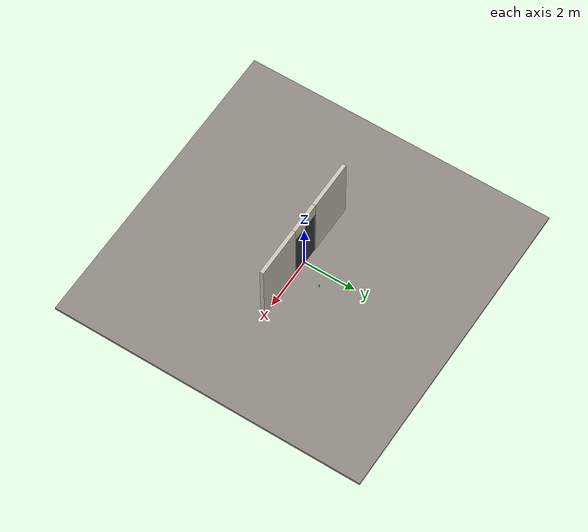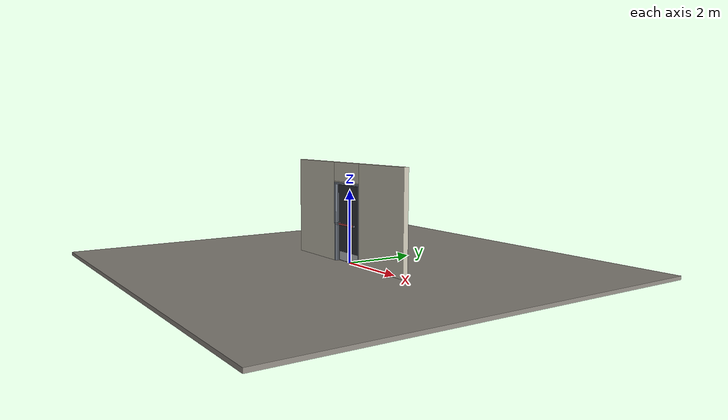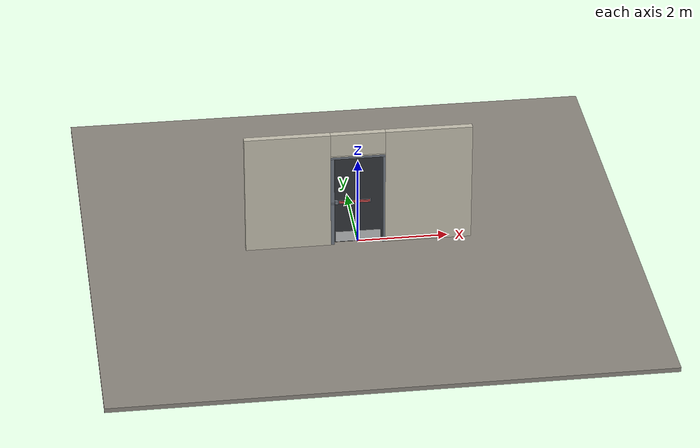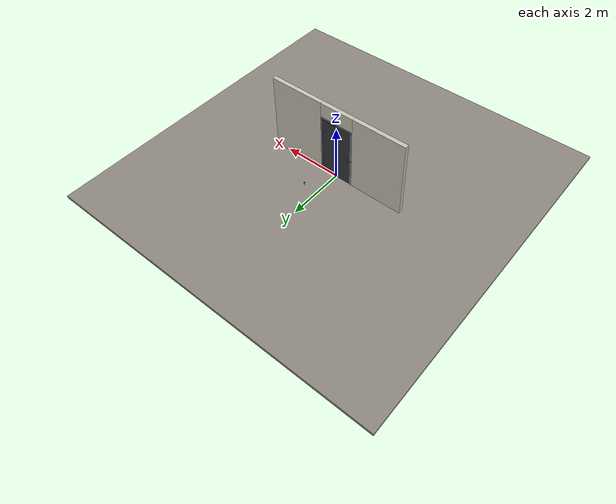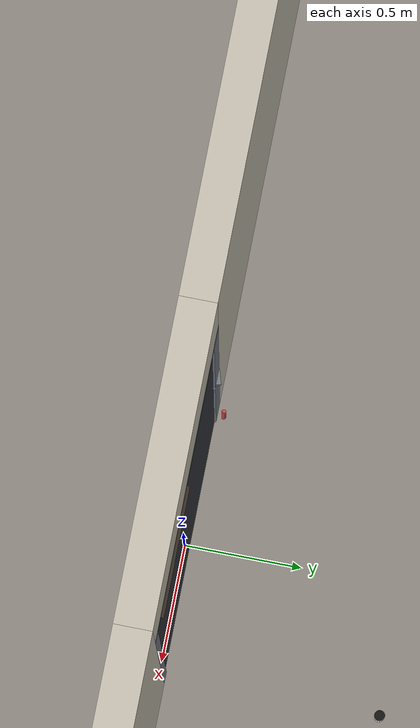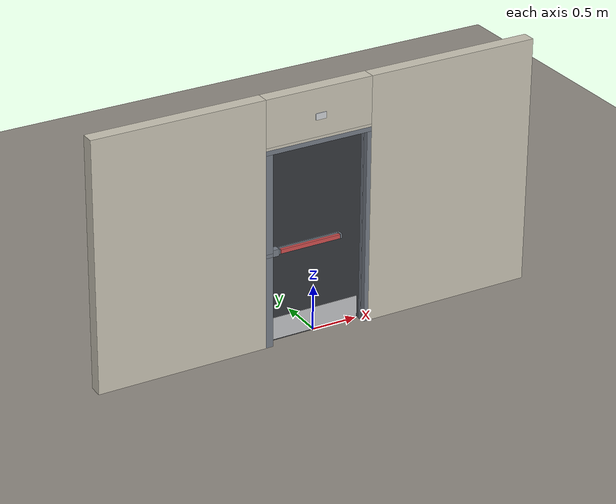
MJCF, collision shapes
<?xml version="1.0" ?>
<mujoco model="db0778_swing_single_full">
  <compiler angle="radian" meshdir="../../hardware" texturedir="../../textures" autolimits="true" inertiafromgeom="false"/>
  <option timestep="0.002" integrator="implicitfast" cone="elliptic" impratio="10" noslip_iterations="3">
    <flag multiccd="enable"/>
  </option>
  <size memory="16M"/>
  <default>
    <geom condim="4" solref="0.005 1" solimp="0.95 0.99 0.001"/>
    <joint solreflimit="0.005 1" solimplimit="0.95 0.99 0.001"/>
    <tendon solreflimit="0.005 1"/>
    <equality solref="0.002 1"/>
  </default>
  <visual>
    <headlight ambient="0.4 0.4 0.4" diffuse="0.7 0.7 0.7" specular="0.2 0.2 0.2"/>
    <quality shadowsize="4096"/>
    <map znear="0.01" zfar="60"/>
  </visual>
  <asset>
    <mesh name="exit_sign_a6449bfa2c" file="exit_sign_a6449bfa2c.obj"/>
    <mesh name="hinge_ed08f20e7f" file="hinge_ed08f20e7f.obj"/>
    <mesh name="hinge_jamb_1278ce3e25" file="hinge_jamb_1278ce3e25.obj"/>
    <mesh name="pull_1e5d69a91a" file="pull_1e5d69a91a.obj"/>
    <mesh name="touchbar_pad_53c3bea3f4" file="touchbar_pad_53c3bea3f4.obj"/>
    <material name="mat_floor" rgba="0.55 0.53 0.5 1" specular="0.2" shininess="0.15" reflectance="0"/>
    <material name="mat_wall" rgba="0.78 0.76 0.7 1" specular="0.2" shininess="0.1" reflectance="0"/>
    <material name="mat_leaf" rgba="0.2 0.21 0.23 1" specular="0.2" shininess="0.43" reflectance="0"/>
    <material name="mat_leaf_louver" rgba="0.17 0.178 0.196 1" specular="0.2" shininess="0.4" reflectance="0"/>
    <material name="mat_hinge" rgba="0.65 0.66 0.68 1" specular="0.74" shininess="0.5" reflectance="0.36"/>
    <material name="mat_op_steel_painted" rgba="0.45 0.48 0.52 1" specular="0.32" shininess="0.6" reflectance="0.08"/>
    <material name="mat_op_stainless" rgba="0.75 0.76 0.77 1" specular="0.8" shininess="0.65" reflectance="0.4"/>
    <material name="mat_bolt" rgba="0.75 0.76 0.77 1" specular="0.8" shininess="0.65" reflectance="0.4"/>
    <material name="mat_frame" rgba="0.45 0.48 0.52 1" specular="0.32" shininess="0.6" reflectance="0.08"/>
    <material name="mat_seal" rgba="0.1 0.1 0.1 1" specular="0.2" shininess="0.1" reflectance="0"/>
    <material name="mat_closer" rgba="0.22 0.17 0.13 1" specular="0.8" shininess="0.6" reflectance="0.4"/>
    <material name="mat_kick" rgba="0.75 0.76 0.77 1" specular="0.8" shininess="0.65" reflectance="0.4"/>
    <material name="mat_exit_sign" rgba="0.85 0.1 0.1 1" specular="0.2" shininess="0.6" reflectance="0"/>
    <material name="mat_sign_bracket" rgba="0.8 0.81 0.83 1" specular="0.8" shininess="0.6" reflectance="0.4"/>
    <material name="mat_bumper_stop" rgba="0.08 0.08 0.08 1" specular="0.2" shininess="0.1" reflectance="0"/>
    <material name="mat_stop_base" rgba="0.9 0.9 0.92 1" specular="0.8" shininess="0.9" reflectance="0.4"/>
    <texture name="skybox" type="skybox" builtin="gradient" rgb1="0.6 0.7 0.85" rgb2="0.9 0.92 0.95" width="256" height="256"/>
  </asset>
  <worldbody>
    <light name="sun" pos="1.5 -2.5 4" dir="-0.3 0.5 -0.8" directional="true" diffuse="0.8 0.8 0.8" specular="0.3 0.3 0.3" castshadow="true"/>
    <light name="fill" pos="-1.5 2.5 3" dir="0.3 -0.5 -0.7" directional="true" diffuse="0.35 0.35 0.4" castshadow="false"/>
    <camera name="robot_view" pos="0 -2.681312 1.812087" xyaxes="1 0 0 0 0.26963 0.962964" fovy="52"/>
    <camera name="far_view" pos="0 2.594313 1.812087" xyaxes="-1 0 0 0 -0.26963 0.962964" fovy="52"/>
    <camera name="iso" pos="-2.004737 -2.259262 2.234138" xyaxes="0.741536 -0.670913 0 0.242917 0.268487 0.932151" fovy="46"/>
    <camera name="detail_handle" pos="-0.263 -0.718 1.32" xyaxes="0.97561 0.219512 0 -0.070934 0.315262 0.94635" fovy="38"/>
    <geom name="floor" type="box" size="6 6 0.05" pos="0 0 -0.05" material="mat_floor" group="0" contype="1" conaffinity="1" friction="0.8 0.005 0.0001" density="2400"/>
    <geom name="wall_left" type="box" size="0.9415 0.0725 1.3735" pos="-1.5585 -0.0435 1.3735" material="mat_wall" group="0" contype="1" conaffinity="1" friction="0.6 0.005 0.0001" density="800"/>
    <geom name="wall_right" type="box" size="0.9565 0.0725 1.3735" pos="1.5435 -0.0435 1.3735" material="mat_wall" group="0" contype="1" conaffinity="1" friction="0.6 0.005 0.0001" density="800"/>
    <geom name="wall_header" type="box" size="0.602 0.0725 0.26" pos="-0.015 -0.0435 2.487" material="mat_wall" group="0" contype="1" conaffinity="1" friction="0.6 0.005 0.0001" density="800"/>
    <geom name="hinge_0_jamb" type="mesh" mesh="hinge_jamb_1278ce3e25" pos="0.534 0.029 0.259" quat="0 0 0 1" material="mat_hinge" group="1" contype="0" conaffinity="0" density="7850"/>
    <geom name="hinge_1_jamb" type="mesh" mesh="hinge_jamb_1278ce3e25" pos="0.534 0.029 0.827" quat="0 0 0 1" material="mat_hinge" group="1" contype="0" conaffinity="0" density="7850"/>
    <geom name="hinge_2_jamb" type="mesh" mesh="hinge_jamb_1278ce3e25" pos="0.534 0.029 1.395" quat="0 0 0 1" material="mat_hinge" group="1" contype="0" conaffinity="0" density="7850"/>
    <geom name="hinge_3_jamb" type="mesh" mesh="hinge_jamb_1278ce3e25" pos="0.534 0.029 1.963" quat="0 0 0 1" material="mat_hinge" group="1" contype="0" conaffinity="0" density="7850"/>
    <geom name="jamb_hinge" type="box" size="0.025 0.0725 1.0735" pos="0.562 -0.0435 1.0735" material="mat_frame" group="0" contype="1" conaffinity="1" friction="0.6 0.005 0.0001" density="300"/>
    <geom name="strike_1040_wall_n" type="box" size="0.04 0.0305 0.02" pos="-0.577 -0.0855 1.04" material="mat_frame" group="0" contype="1" conaffinity="1" friction="0.6 0.005 0.0001" density="300"/>
    <geom name="strike_1040_wall_p" type="box" size="0.04 0.008 0.02" pos="-0.577 -0.025 1.04" material="mat_frame" group="0" contype="1" conaffinity="1" friction="0.6 0.005 0.0001" density="300"/>
    <geom name="strike_1040_ramp" type="box" size="0.04 0.034482 0.02" pos="-0.585281 0.0044 1.04" quat="0.989198 0 0 0.146587" material="mat_frame" group="0" contype="1" conaffinity="1" friction="0.12 0.005 0.0001" density="300"/>
    <geom name="strike_1040_back" type="box" size="0.0285 0.011 0.02" pos="-0.5885 -0.044 1.04" material="mat_frame" group="0" contype="1" conaffinity="1" friction="0.6 0.005 0.0001" density="300"/>
    <geom name="jamb_strike_0" type="box" size="0.04 0.0725 0.51" pos="-0.577 -0.0435 0.51" material="mat_frame" group="0" contype="1" conaffinity="1" friction="0.6 0.005 0.0001" density="300"/>
    <geom name="jamb_strike_1" type="box" size="0.04 0.0725 0.5435" pos="-0.577 -0.0435 1.6035" material="mat_frame" group="0" contype="1" conaffinity="1" friction="0.6 0.005 0.0001" density="300"/>
    <geom name="jamb_head" type="box" size="0.602 0.0725 0.025" pos="-0.015 -0.0435 2.172" material="mat_frame" group="0" contype="1" conaffinity="1" friction="0.6 0.005 0.0001" density="300"/>
    <geom name="head_stud" type="box" size="0.602 0.0725 0.015" pos="-0.015 -0.0435 2.212" material="mat_wall" group="0" contype="1" conaffinity="1" friction="0.6 0.005 0.0001" density="500"/>
    <geom name="stop_hinge" type="box" size="0.0055 0.016 1.0735" pos="0.5315 -0.0385 1.0735" material="mat_frame" group="0" contype="1" conaffinity="1" friction="0.6 0.005 0.0001" density="300"/>
    <geom name="stop_strike" type="box" size="0.0055 0.016 0.49625" pos="-0.5315 -0.0385 0.49625" material="mat_frame" group="0" contype="1" conaffinity="1" friction="0.6 0.005 0.0001" density="300"/>
    <geom name="stop_strike_1" type="box" size="0.0055 0.016 0.52975" pos="-0.5315 -0.0385 1.61725" material="mat_frame" group="0" contype="1" conaffinity="1" friction="0.6 0.005 0.0001" density="300"/>
    <geom name="stop_head" type="box" size="0.537 0.016 0.0055" pos="0 -0.0385 2.1415" material="mat_frame" group="0" contype="1" conaffinity="1" friction="0.6 0.005 0.0001" density="300"/>
    <geom name="seal_hinge" type="box" size="0.004 0.0025 1.0735" pos="0.534 -0.0245 1.0735" material="mat_seal" group="1" contype="0" conaffinity="0" density="1100"/>
    <geom name="seal_strike" type="box" size="0.004 0.0025 0.49625" pos="-0.534 -0.0245 0.49625" material="mat_seal" group="1" contype="0" conaffinity="0" density="1100"/>
    <geom name="seal_strike_1" type="box" size="0.004 0.0025 0.52975" pos="-0.534 -0.0245 1.61725" material="mat_seal" group="1" contype="0" conaffinity="0" density="1100"/>
    <geom name="seal_head" type="box" size="0.517 0.0025 0.008" pos="0 -0.0245 2.135" material="mat_seal" group="1" contype="0" conaffinity="0" density="1100"/>
    <geom name="closer_concealed_slot" type="box" size="0.25 0.008 0.004" pos="0.237 0.032 2.152" material="mat_closer" group="1" contype="0" conaffinity="0" density="2700"/>
    <geom name="exit_sign" type="mesh" mesh="exit_sign_a6449bfa2c" pos="0 -0.15 2.447" material="mat_exit_sign" group="2" contype="0" conaffinity="0" density="500"/>
    <geom name="exit_sign_bracket" type="box" size="0.05775 0.005 0.035" pos="0 -0.1205 2.447" material="mat_sign_bracket" group="2" contype="0" conaffinity="0" density="7850"/>
    <geom name="door_stop_base" type="cylinder" size="0.022 0.003" pos="0.55 0.93595 0.003" material="mat_stop_base" group="0" contype="1" conaffinity="1" friction="0.6 0.005 0.0001" density="7850"/>
    <geom name="door_stop_post" type="cylinder" size="0.012 0.0245" pos="0.55 0.93595 0.0305" material="mat_stop_base" group="0" contype="1" conaffinity="1" friction="0.6 0.005 0.0001" density="7850"/>
    <geom name="door_stop_bumper" type="cylinder" size="0.022 0.02" pos="0.55 0.93595 0.075" material="mat_bumper_stop" group="0" contype="1" conaffinity="1" friction="0.6 0.005 0.0001" density="1100"/>
    <site name="approach_point" pos="0 -1.5 0" quat="1 0 0 0" size="0.05" rgba="0.2 0.9 0.2 0.5" group="4"/>
    <site name="goal_point" pos="0 1.5 0" quat="1 0 0 0" size="0.05" rgba="0.2 0.9 0.2 0.5" group="4"/>
    <site name="door_plane_center" pos="0 0 1.0735" quat="1 0 0 0" size="0.02" rgba="0.2 0.9 0.2 0.5" group="4"/>
    <body name="leaf" pos="0.537 0 0">
      <inertial pos="-0.539365 -0.002123 1.027111" mass="57.783332" quat="0.500054 0.501254 -0.497376 0.501307" diaginertia="5.837734073 22.177632752 27.979714889"/>
      <joint name="leaf_hinge" type="hinge" axis="0 0 -1" pos="-0.003 0.029 0" limited="true" range="0 1.570796" solreflimit="0.02 1" damping="10.49954" frictionloss="2.445432" stiffness="13.852846" springref="-2.233476" armature="0.02"/>
      <geom name="leaf_slab" type="box" size="0.5335 0.022 1.067" pos="-0.5365 0 1.076" material="mat_leaf" group="0" contype="1" conaffinity="1" friction="0.4 0.005 0.0001" density="1"/>
      <geom name="leaf_louver_0" type="box" size="0.26675 0.002 0.02625" pos="-0.5365 0 0.284" quat="0.953717 0.300706 0 0" material="mat_leaf_louver" group="1" contype="0" conaffinity="0" density="1"/>
      <geom name="leaf_louver_1" type="box" size="0.26675 0.002 0.02625" pos="-0.5365 0 0.334" quat="0.953717 0.300706 0 0" material="mat_leaf_louver" group="1" contype="0" conaffinity="0" density="1"/>
      <geom name="leaf_louver_2" type="box" size="0.26675 0.002 0.02625" pos="-0.5365 0 0.384" quat="0.953717 0.300706 0 0" material="mat_leaf_louver" group="1" contype="0" conaffinity="0" density="1"/>
      <geom name="leaf_louver_3" type="box" size="0.26675 0.002 0.02625" pos="-0.5365 0 0.434" quat="0.953717 0.300706 0 0" material="mat_leaf_louver" group="1" contype="0" conaffinity="0" density="1"/>
      <geom name="leaf_louver_4" type="box" size="0.26675 0.002 0.02625" pos="-0.5365 0 0.484" quat="0.953717 0.300706 0 0" material="mat_leaf_louver" group="1" contype="0" conaffinity="0" density="1"/>
      <geom name="leaf_louver_5" type="box" size="0.26675 0.002 0.02625" pos="-0.5365 0 0.534" quat="0.953717 0.300706 0 0" material="mat_leaf_louver" group="1" contype="0" conaffinity="0" density="1"/>
      <geom name="leaf_louver_6" type="box" size="0.26675 0.002 0.02625" pos="-0.5365 0 0.584" quat="0.953717 0.300706 0 0" material="mat_leaf_louver" group="1" contype="0" conaffinity="0" density="1"/>
      <geom name="leaf_louver_7" type="box" size="0.26675 0.002 0.02625" pos="-0.5365 0 0.634" quat="0.953717 0.300706 0 0" material="mat_leaf_louver" group="1" contype="0" conaffinity="0" density="1"/>
      <geom name="leaf_louver_8" type="box" size="0.26675 0.002 0.02625" pos="-0.5365 0 0.684" quat="0.953717 0.300706 0 0" material="mat_leaf_louver" group="1" contype="0" conaffinity="0" density="1"/>
      <geom name="hinge_0" type="mesh" mesh="hinge_ed08f20e7f" pos="-0.003 0.029 0.259" quat="0 0 0 1" material="mat_hinge" group="1" contype="0" conaffinity="0" density="7850"/>
      <geom name="hinge_1" type="mesh" mesh="hinge_ed08f20e7f" pos="-0.003 0.029 0.827" quat="0 0 0 1" material="mat_hinge" group="1" contype="0" conaffinity="0" density="7850"/>
      <geom name="hinge_2" type="mesh" mesh="hinge_ed08f20e7f" pos="-0.003 0.029 1.395" quat="0 0 0 1" material="mat_hinge" group="1" contype="0" conaffinity="0" density="7850"/>
      <geom name="hinge_3" type="mesh" mesh="hinge_ed08f20e7f" pos="-0.003 0.029 1.963" quat="0 0 0 1" material="mat_hinge" group="1" contype="0" conaffinity="0" density="7850"/>
      <geom name="leaf_exit_device_rail" type="box" size="0.366775 0.006 0.025" pos="-0.623225 -0.028 1.04" material="mat_op_steel_painted" group="0" contype="1" conaffinity="1" friction="0.6 0.005 0.0001" density="3000"/>
      <geom name="leaf_exit_device_rail_end_n" type="box" size="0.01 0.0325 0.025" pos="-0.98 -0.0545 1.04" material="mat_op_steel_painted" group="0" contype="1" conaffinity="1" friction="0.6 0.005 0.0001" density="3000"/>
      <geom name="leaf_exit_device_rail_end_p" type="box" size="0.01 0.0325 0.025" pos="-0.26645 -0.0545 1.04" material="mat_op_steel_painted" group="0" contype="1" conaffinity="1" friction="0.6 0.005 0.0001" density="3000"/>
      <geom name="leaf_exit_device_case" type="box" size="0.034 0.034125 0.0375" pos="-1.024 -0.056125 1.04" material="mat_op_steel_painted" group="0" contype="1" conaffinity="1" friction="0.6 0.005 0.0001" density="3000"/>
      <geom name="leaf_far_pull_p" type="mesh" mesh="pull_1e5d69a91a" pos="-0.98 0.022 1.04" quat="0 0 0.707107 0.707107" material="mat_op_stainless" group="1" contype="0" conaffinity="0" density="3000"/>
      <geom name="leaf_far_pull_col_p" type="capsule" size="0.0095 0.08" pos="-0.98 0.082 1.04" material="mat_op_stainless" group="3" contype="1" conaffinity="1" rgba="0.8 0.3 0.3 0.25" friction="0.7 0.01 0.0001" density="3000"/>
      <geom name="kick_plate_n" type="box" size="0.5035 0.0008 0.125" pos="-0.5365 -0.0228 0.144" material="mat_kick" group="2" contype="0" conaffinity="0" density="7900"/>
      <site name="leaf_far_pull_grip_p" pos="-0.98 0.082 1.04" quat="1 0 0 0" size="0.012" rgba="0.2 0.9 0.2 0.5" group="4"/>
      <site name="leaf_edge_mid" pos="-1.07 0 1.067" quat="1 0 0 0" size="0.02" rgba="0.2 0.9 0.2 0.5" group="4"/>
      <body name="leaf_exit_device" pos="-0.623225 -0.022 1.04">
        <inertial pos="0 -0.05 0" mass="5.569155" quat="0.707107 0.707107 0 0" diaginertia="0.001357482 0.219807588 0.220329696"/>
        <joint name="leaf_exit_device_slide" type="slide" axis="0 1 0" limited="true" range="0 0.016" damping="239.147549" frictionloss="0.5" stiffness="2500" springref="-0.018" armature="0.15"/>
        <geom name="leaf_exit_device_pad" type="mesh" mesh="touchbar_pad_53c3bea3f4" pos="0 0 0" quat="0 0 -0.707107 0.707107" material="mat_op_steel_painted" group="1" contype="0" conaffinity="0" density="3000"/>
        <geom name="leaf_exit_device_pad_col" type="box" size="0.343775 0.015 0.0225" pos="0 -0.05 0" material="mat_op_steel_painted" group="3" contype="1" conaffinity="1" rgba="0.8 0.3 0.3 0.25" friction="0.8 0.01 0.0001" density="3000"/>
        <site name="leaf_exit_device_push" pos="0 -0.065 0" quat="1 0 0 0" size="0.015" rgba="0.2 0.9 0.2 0.5" group="4"/>
      </body>
      <body name="leaf_latch_bolt" pos="-1.07 -0.044 1.04">
        <inertial pos="0.0055 0 0" mass="0.102826" quat="0.92388 0.382683 0 0" diaginertia="0.000004365 0.000018287 0.000018287"/>
        <joint name="leaf_latch_bolt_slide" type="slide" axis="1 0 0" limited="true" range="0 0.019" damping="2" frictionloss="0.3" stiffness="800" springref="-0.01" armature="0.1"/>
        <geom name="leaf_latch_bolt_capsule" type="capsule" size="0.0095 0.015" pos="0.0055 0 0" quat="0.707107 0 -0.707107 0" material="mat_bolt" group="0" contype="1" conaffinity="1" friction="0.2 0.005 0.0001" density="8500"/>
      </body>
    </body>
  </worldbody>
  <tendon>
    <fixed name="leaf_latch_bolt_coupling" limited="true" range="0 10">
      <joint joint="leaf_latch_bolt_slide" coef="1"/>
      <joint joint="leaf_exit_device_slide" coef="-1.583333"/>
    </fixed>
  </tendon>
  <sensor>
    <jointpos name="leaf_hinge_pos" joint="leaf_hinge"/>
    <jointvel name="leaf_hinge_vel" joint="leaf_hinge"/>
    <jointpos name="leaf_exit_device_slide_pos" joint="leaf_exit_device_slide"/>
    <jointvel name="leaf_exit_device_slide_vel" joint="leaf_exit_device_slide"/>
    <jointpos name="leaf_latch_bolt_slide_pos" joint="leaf_latch_bolt_slide"/>
    <jointvel name="leaf_latch_bolt_slide_vel" joint="leaf_latch_bolt_slide"/>
  </sensor>
</mujoco>
